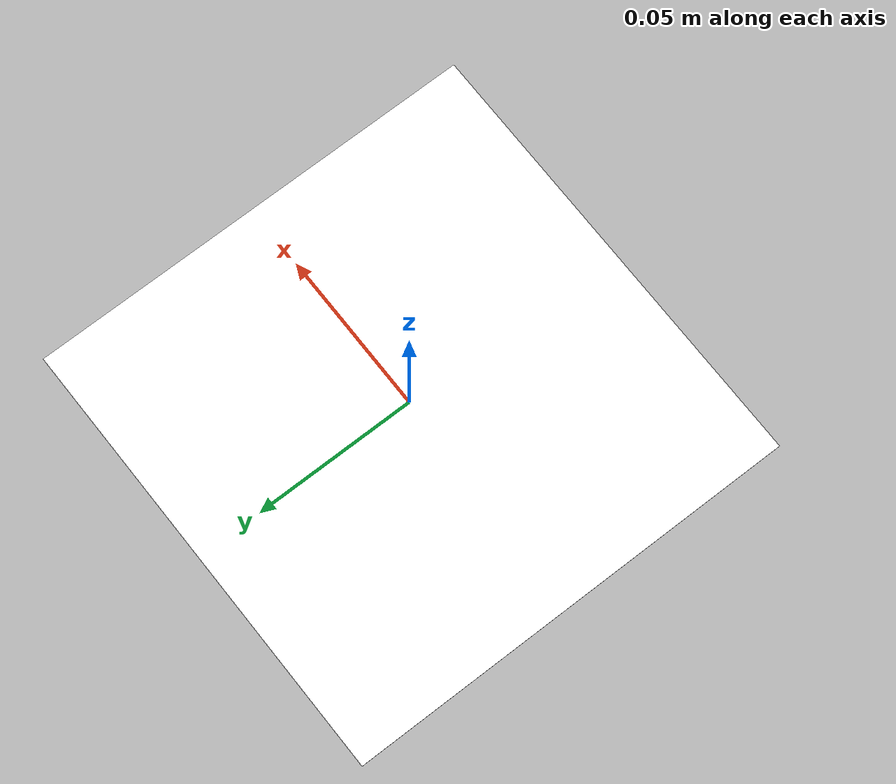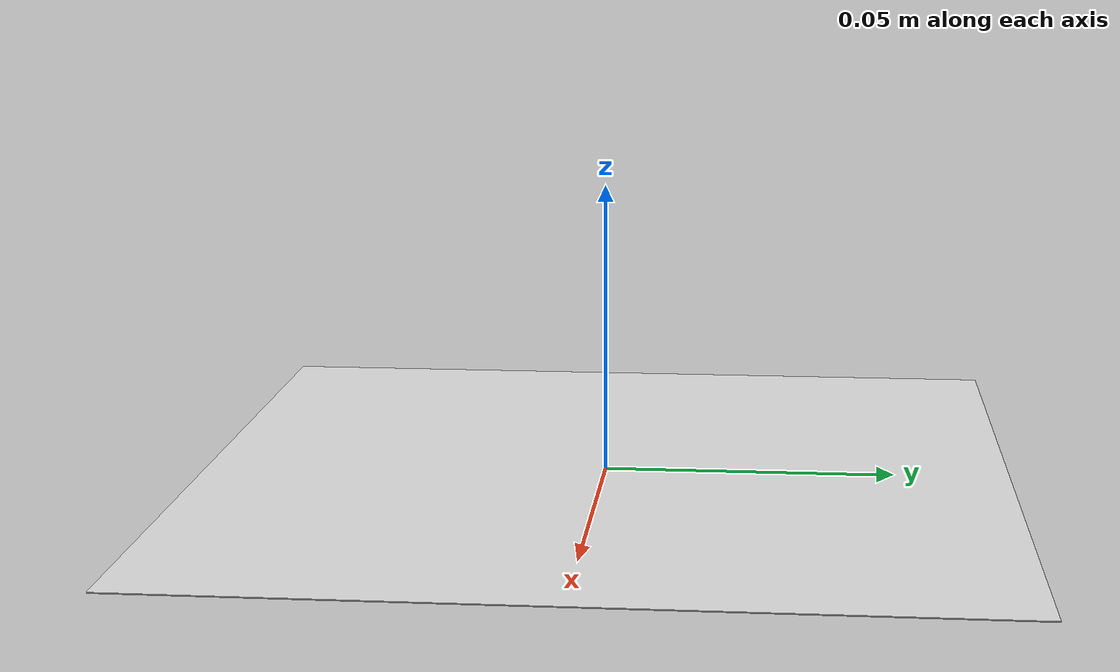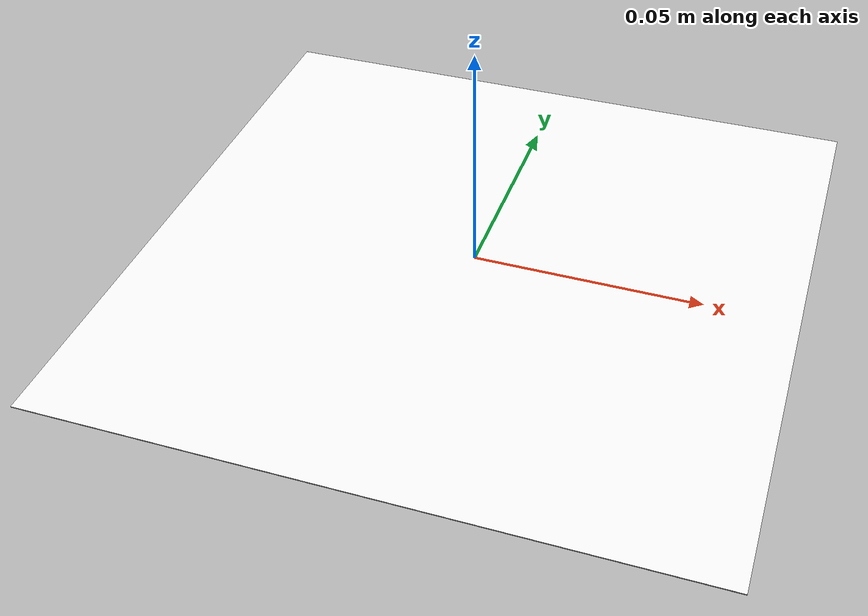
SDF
<?xml version='1.0'?>
<sdf version='1.5'>
  <model name='aruco_visual_marker_2'>

    <link name='marker'>
      <pose frame=''>0 0 0 0 0 0</pose>
      <visual name='visual'>
        <geometry>
          <box>
            <size>0.14 0.14 1e-04</size>
          </box>
        </geometry>
        <material>
          <script>
            <uri>model://aruco_visual_marker_2/materials/scripts</uri>
            <uri>model://aruco_visual_marker_2/materials/textures</uri>
            <name>ArucoVisualMarker2/Marker</name>
          </script>
          <ambient>1 1 1 1</ambient>
          <diffuse>1 1 1 1</diffuse>
          <specular>0 0 0 1</specular>
          <emissive>1 1 1 0</emissive>
          <shader type='vertex'>
            <normal_map>__default__</normal_map>
          </shader>
        </material>
        <pose frame=''>0 0 0 0 -0 0</pose>
        <cast_shadows>1</cast_shadows>
        <transparency>0</transparency>
      </visual>
      <collision name='collision'>
        <laser_retro>0</laser_retro>
        <max_contacts>10</max_contacts>
        <pose frame=''>0 0 0 0 -0 0</pose>
        <geometry>
          <box>
            <size>0.14 0.14 1e-04</size>
          </box>
        </geometry>
      </collision>
    </link>

    <link name='marker_pad'>
      <pose frame='marker'>0 0 -1e-04 0 -0 0</pose>
      <visual name='visual'>
        <geometry>
          <box>
            <size>0.14 0.14 1e-04</size>
          </box>
        </geometry>
        <material>
          <lighting>0</lighting>
          <script>
            <uri>file://media/materials/scripts/gazebo.material</uri>
            <name>Gazebo/White</name>
          </script>
          <ambient>0.3 0.3 0.3 1</ambient>
          <diffuse>0.7 0.7 0.7 1</diffuse>
          <specular>0.01 0.01 0.01 1</specular>
          <emissive>1 1 1 0</emissive>
          <shader type='vertex'>
            <normal_map>__default__</normal_map>
          </shader>
        </material>
        <cast_shadows>1</cast_shadows>
        <transparency>0</transparency>
      </visual>
      <collision name='collision'>
        <laser_retro>0</laser_retro>
        <max_contacts>10</max_contacts>
        <pose frame=''>0 0 0 0 -0 0</pose>
        <geometry>
          <box>
            <size>0.14 0.14 1e-04</size>
          </box>
        </geometry>
      </collision>
    </link>

    <joint name='marker_JOINT_marker_pad' type='revolute'>
      <parent>marker</parent>
      <child>marker_pad</child>
      <pose frame=''>0 0 0 0 -0 0</pose>
      <axis>
        <xyz>0 0 1</xyz>
        <limit>
          <upper>-10000000000000000</upper>
          <lower>10000000000000000</lower>
        </limit>
      </axis>
    </joint>

    <static>1</static>
    <allow_auto_disable>1</allow_auto_disable>

  </model>
</sdf>
